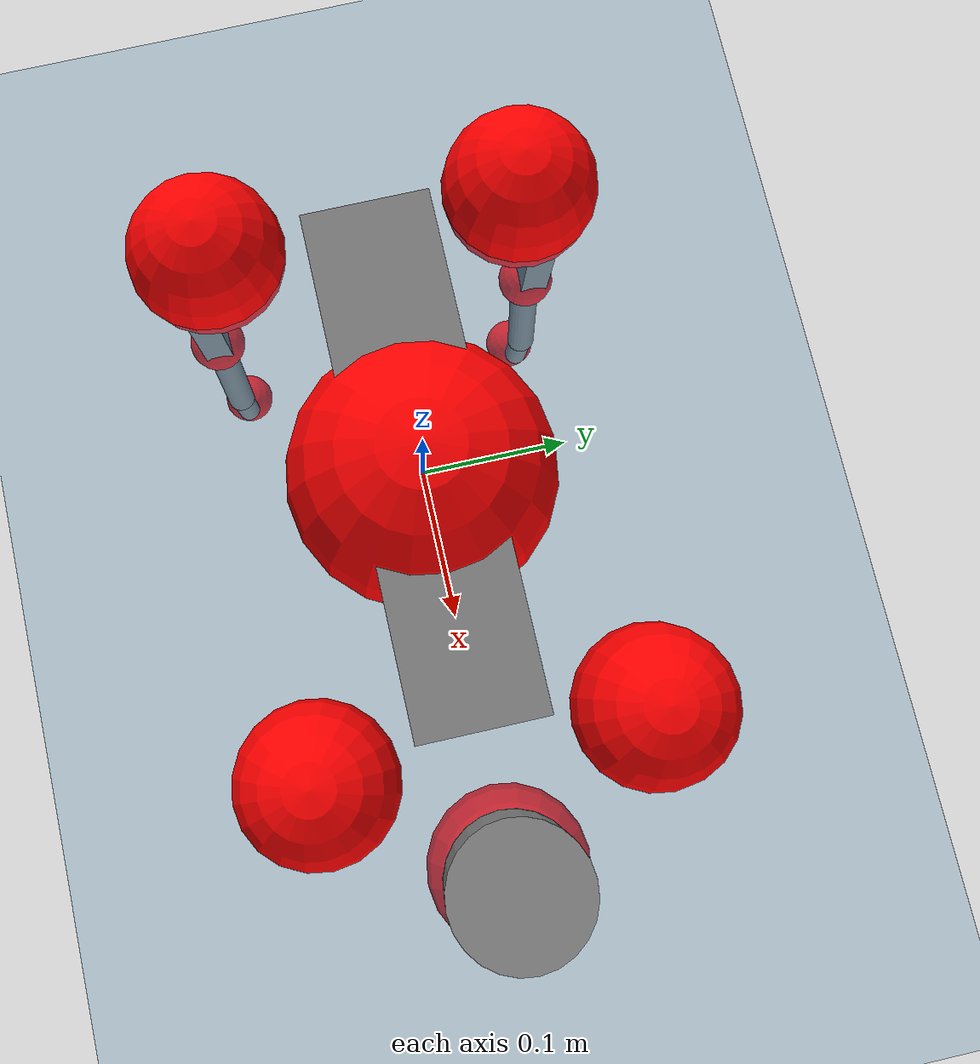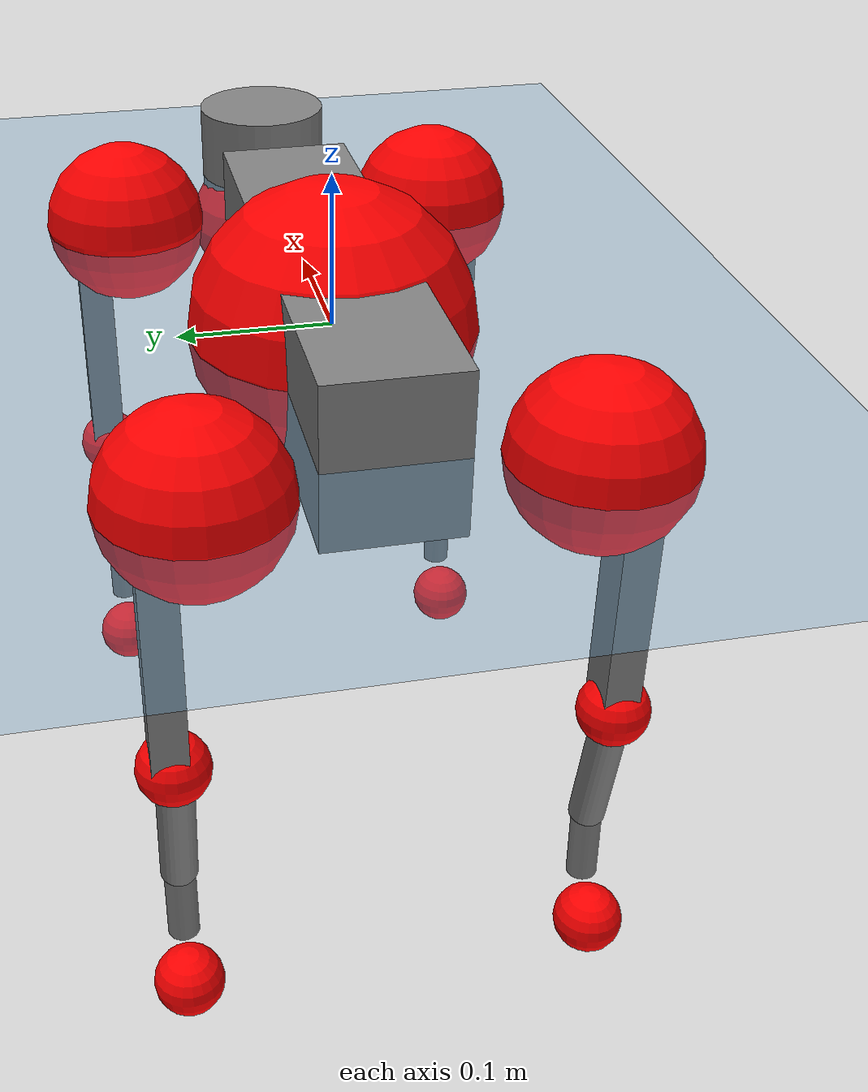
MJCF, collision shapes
<mujoco model="go2">
  <compiler angle="radian" assetdir="assets" balanceinertia="true" inertiafromgeom="false"/>

  <option timestep="0.005" density="1.2" viscosity="2e-05"/>

  <size nkey="1"/>

  <visual>
    <quality shadowsize="8192"/>
    <map shadowclip="0.5"/>
  </visual>

  <default>
    <default class="/">
      <geom contype="0" conaffinity="0" group="1" solref="-1000 -80"/>
      <site size="0.01 0.005 0.005" group="5"/>
      <general forcelimited="true" biastype="affine" gainprm="20" biasprm="0 -20 -0.5"/>
      <default class="go2">
        <joint armature="0.01" damping="0.01" frictionloss="0.2"/>
        <geom condim="1" margin="0.001"/>
        <default class="visual">
          <geom type="mesh" group="2"/>
        </default>
        <default class="collision">
          <geom group="3"/>
          <default class="foot">
            <geom size="0.022 0 0" condim="6" priority="1" friction="0.8 0.02 0.01" solimp="0.015 1 0.022"/>
          </default>
        </default>
        <default class="reward_collision_sphere">
          <geom group="5" rgba="1 0 0 1"/>
        </default>
      </default>
    </default>
  </default>

  <asset>
    <texture type="skybox" colorspace="auto" name="//unnamed_texture_0" builtin="gradient" rgb1="0.95 0.95 0.95" rgb2="0.95 0.95 0.95" width="100" height="600"/>
    <texture type="2d" colorspace="auto" name="texplane" builtin="checker" rgb1="0.345 0.575 0.748" rgb2="0.345 0.575 0.748" markrgb="1 1 1" width="512" height="512"/>
    <material name="MatPlane" class="/" texture="texplane" texuniform="true" texrepeat="2 2" specular="0.9"/>
    <material name="metal" class="/" rgba="0.9 0.95 0.95 1"/>
    <material name="black" class="/" rgba="0 0 0 1"/>
    <material name="white" class="/"/>
    <material name="gray" class="/" rgba="0.671705 0.692426 0.77427 1"/>
    <mesh name="base_0" class="/" file="base_0.obj"/>
    <mesh name="base_1" class="/" file="base_1.obj"/>
    <mesh name="base_2" class="/" file="base_2.obj"/>
    <mesh name="base_3" class="/" file="base_3.obj"/>
    <mesh name="base_4" class="/" file="base_4.obj"/>
    <mesh name="hip_0" class="/" file="hip_0.obj"/>
    <mesh name="hip_1" class="/" file="hip_1.obj"/>
    <mesh name="thigh_0" class="/" file="thigh_0.obj"/>
    <mesh name="thigh_1" class="/" file="thigh_1.obj"/>
    <mesh name="thigh_mirror_0" class="/" file="thigh_mirror_0.obj"/>
    <mesh name="thigh_mirror_1" class="/" file="thigh_mirror_1.obj"/>
    <mesh name="calf_0" class="/" file="calf_0.obj"/>
    <mesh name="calf_1" class="/" file="calf_1.obj"/>
    <mesh name="calf_mirror_0" class="/" file="calf_mirror_0.obj"/>
    <mesh name="calf_mirror_1" class="/" file="calf_mirror_1.obj"/>
    <mesh name="foot" class="/" file="foot.obj"/>
  </asset>

  <worldbody>
    <geom name="floor" class="/" size="100 100 0.125" type="plane" group="0" material="MatPlane"/>
    <light name="toplight_shadow" class="/" pos="0 0 5" dir="0.0990148 0.0990148 -0.990148" type="directional" ambient="0.04 0.04 0.04" diffuse="0.55 0.55 0.55" specular="0.12 0.12 0.12"/>
    <light name="toplight_fill" class="/" pos="0 0 5" dir="0.0990148 0.0990148 -0.990148" type="directional" castshadow="false" ambient="0.04 0.04 0.04" diffuse="0.3 0.3 0.3" specular="0.08 0.08 0.08"/>
    <body name="trunk" childclass="go2" pos="-0.0001964 -0.000405607 0.000351062" quat="1 -1.6346e-05 -2.2642e-05 -1.03423e-05">
      <inertial pos="0.0196309 -0.000800177 -0.00462885" quat="0.00272744 0.711064 -0.0113751 0.70303" mass="5.70968" diaginertia="0.0936232 0.0861595 0.0121927"/>
      <joint name="//unnamed_joint_0" type="free" armature="0" damping="0" frictionloss="0"/>
      <geom name="//unnamed_geom_1" class="visual" material="black" mesh="base_0"/>
      <geom name="//unnamed_geom_2" class="visual" material="black" mesh="base_1"/>
      <geom name="//unnamed_geom_3" class="visual" material="black" mesh="base_2"/>
      <geom name="//unnamed_geom_4" class="visual" material="white" mesh="base_3"/>
      <geom name="//unnamed_geom_5" class="visual" material="gray" mesh="base_4"/>
      <geom name="trunk_1" class="collision" size="0.176461 0.0438573 0.053473" type="box"/>
      <geom name="trunk_2" class="collision" size="0.0469062 0.0422156" pos="0.276992 0 0.00870393" type="cylinder"/>
      <geom name="trunk_3" class="collision" size="0.0440918" pos="0.284767 0 -0.0522236"/>
      <geom name="//unnamed_geom_9" class="reward_collision_sphere" size="0.0938124"/>
      <geom name="//unnamed_geom_10" class="reward_collision_sphere" size="0.0562874" pos="0.272133 0 -0.0391677"/>
      <site name="imu" pos="-0.0236192 -0.00370445 0.0348453" size="0.00938124"/>
      <camera name="track" pos="0 -1.94415 0" quat="0.707107 0.707107 0 0" mode="trackcom"/>
      <camera name="ego_camera" pos="0.303234 0 0.0391677" quat="-0.5 -0.5 0.5 0.5"/>
      <body name="FL_hip" pos="0.187076 0.0474271 0.00272959" quat="1 -0.000137619 0.000274644 -0.000135407">
        <inertial pos="-0.00560057 0.00196907 -0.000820933" quat="0.496225 0.497916 0.505853 0.499953" mass="0.559503" diaginertia="0.000765905 0.000517291 0.000241634"/>
        <joint name="FL_hip_joint" pos="0 0 0" axis="0.999987 0.00502836 0.000300466" stiffness="0.0106471" range="-1.00621 1.03149" armature="0.00943279" damping="0.00109977" frictionloss="0.185431"/>
        <geom name="//unnamed_geom_11" class="visual" material="metal" mesh="hip_0"/>
        <geom name="//unnamed_geom_12" class="visual" material="gray" mesh="hip_1"/>
        <geom name="//unnamed_geom_13" class="collision" size="0.0431537 0.0187625" pos="0 0.077766 0" quat="0.707107 0.707107 0 0" type="cylinder"/>
        <geom name="//unnamed_geom_14" class="reward_collision_sphere" size="0.0562874" pos="0 0.0680453 0"/>
        <body name="FL_thigh" pos="-0.00110585 0.0946136 0.00221365" quat="1 -1.44483e-05 -2.26376e-05 -7.98363e-06">
          <inertial pos="-0.00395893 -0.0220705 -0.0279204" quat="0.827558 0.0860121 -0.0163114 0.554512" mass="0.951743" diaginertia="0.00517562 0.00505628 0.000441371"/>
          <joint name="FL_thigh_joint" pos="0 0 0" axis="0.00843405 0.999964 -0.00121452" stiffness="0.00526272" range="-1.58781 3.52425" armature="0.00970517" damping="0.00982874" frictionloss="0.179121"/>
          <geom name="//unnamed_geom_15" class="visual" material="metal" mesh="thigh_0"/>
          <geom name="//unnamed_geom_16" class="visual" material="gray" mesh="thigh_1"/>
          <geom name="//unnamed_geom_17" class="collision" size="0.0999102 0.011492 0.0159481" pos="0 0 -0.0926968" quat="0.707107 0 0.707107 0" type="box"/>
          <body name="FL_calf" pos="-0.000298907 -0.00233941 -0.184597" quat="1 -0.000204596 0.000362022 6.36348e-06">
            <inertial pos="0.00590465 -0.000416296 -0.12463" quat="0.710752 0.00207976 -0.00383364 0.703429" mass="0.198475" diaginertia="0.00129084 0.00130057 2.60243e-05"/>
            <joint name="FL_calf_joint" pos="0 0 0" axis="-0.00735182 0.999967 -0.00341942" stiffness="0.00236435" range="-2.76171 -0.834517" armature="0.00965607" damping="0.000834128" frictionloss="0.188958"/>
            <geom name="//unnamed_geom_18" class="visual" material="gray" mesh="calf_0"/>
            <geom name="//unnamed_geom_19" class="visual" material="black" mesh="calf_1"/>
            <geom name="FL_calf0" class="collision" size="0.0112575 0.0562874" pos="0.00777522 0 -0.0522236" quat="0.994493 0 -0.104807 0" type="cylinder"/>
            <geom name="//unnamed_geom_21" class="collision" size="0.0103194 0.030489" pos="0.019438 0 -0.128818" quat="0.999688 0 0.0249974 0" type="cylinder"/>
            <geom name="//unnamed_geom_22" class="visual" pos="0 0 -0.185394" quat="1 0 0 0" material="black" mesh="foot"/>
            <geom name="FL_foot" class="foot" size="0.0181262" pos="-0.0019438 0 -0.185394"/>
            <geom name="//unnamed_geom_24" class="reward_collision_sphere" size="0.0234531"/>
            <geom name="//unnamed_geom_25" class="reward_collision_sphere" size="0.0234531" pos="-0.0019438 0 -0.185394"/>
            <site name="FL_foot" class="foot" pos="-0.0019438 0 -0.185394" size="0.00938124"/>
          </body>
        </body>
      </body>
      <body name="FR_hip" pos="0.18838 -0.0444104 -0.000923175" quat="1 -5.55527e-05 -8.18623e-05 -2.38948e-05">
        <inertial pos="-0.00447965 -0.00126608 -0.00100028" quat="0.498163 0.505458 0.499215 0.497122" mass="0.55398" diaginertia="0.000775384 0.000505351 0.000242351"/>
        <joint name="FR_hip_joint" pos="0 0 0" axis="0.999996 -0.00291104 6.54755e-05" stiffness="0.00705743" range="-1.05055 1.0478" armature="0.00907952" damping="0.0177665" frictionloss="0.179693"/>
        <geom name="//unnamed_geom_26" class="visual" pos="0 8.85813e-10 3.79943e-08" quat="4.63268e-05 1 0 0" material="metal" mesh="hip_0"/>
        <geom name="//unnamed_geom_27" class="visual" pos="0 1.43601e-09 -9.39745e-08" quat="4.63268e-05 1 0 0" material="gray" mesh="hip_1"/>
        <geom name="//unnamed_geom_28" class="collision" size="0.0431537 0.0187625" pos="0 -0.077766 0" quat="0.707107 0.707107 0 0" type="cylinder"/>
        <geom name="//unnamed_geom_29" class="reward_collision_sphere" size="0.0562874" pos="0 -0.0680453 0"/>
        <body name="FR_thigh" pos="0.00232686 -0.0909788 0.00193281" quat="1 -1.74991e-05 0.00029456 0.000403179">
          <inertial pos="-0.0028307 0.0198386 -0.0283684" quat="0.550749 -0.0216292 0.0871386 0.829828" mass="0.960403" diaginertia="0.00522681 0.00511615 0.000448608"/>
          <joint name="FR_thigh_joint" pos="0 0 0" axis="0.000595142 -0.999998 0.00196934" stiffness="0.00167503" range="-3.52542 1.56853" armature="0.00959337" damping="0.0124992" frictionloss="0.187364"/>
          <geom name="//unnamed_geom_30" class="visual" material="metal" mesh="thigh_mirror_0"/>
          <geom name="//unnamed_geom_31" class="visual" material="gray" mesh="thigh_mirror_1"/>
          <geom name="//unnamed_geom_32" class="collision" size="0.0999102 0.011492 0.0159481" pos="0 0 -0.0926968" quat="0.707107 0 0.707107 0" type="box"/>
          <body name="FR_calf" pos="-0.00154094 0.000268895 -0.1849" quat="1 -0.000242469 0.000425385 0.000211834">
            <inertial pos="0.00504411 0.000647512 -0.123645" quat="0.704849 -0.00635422 0.00104542 0.709328" mass="0.200024" diaginertia="0.00129199 0.00126889 2.63138e-05"/>
            <joint name="FR_calf_joint" pos="0 0 0" axis="-0.00440876 -0.999949 0.00913622" stiffness="0.00273303" range="0.845313 2.71699" armature="0.0100907" damping="0.0181554" frictionloss="0.178672"/>
            <geom name="//unnamed_geom_33" class="visual" material="gray" mesh="calf_mirror_0"/>
            <geom name="//unnamed_geom_34" class="visual" material="black" mesh="calf_mirror_1"/>
            <geom name="FR_calf0" class="collision" size="0.0121956 0.0562874" pos="0.00971902 0 -0.0522236" quat="0.995004 0 -0.0998334 0" type="cylinder"/>
            <geom name="//unnamed_geom_36" class="collision" size="0.0103194 0.030489" pos="0.019438 0 -0.128818" quat="0.999688 0 0.0249974 0" type="cylinder"/>
            <geom name="//unnamed_geom_37" class="visual" pos="0 0 -0.185394" quat="1 0 0 0" material="black" mesh="foot"/>
            <geom name="FR_foot" class="foot" size="0.0219007" pos="-0.0019438 0 -0.185394"/>
            <geom name="//unnamed_geom_39" class="reward_collision_sphere" size="0.0234531"/>
            <geom name="//unnamed_geom_40" class="reward_collision_sphere" size="0.0234531" pos="-0.0019438 0 -0.185394"/>
            <site name="FR_foot" class="foot" pos="-0.0019438 0 -0.185394" size="0.00938124"/>
          </body>
        </body>
      </body>
      <body name="RL_hip" pos="-0.188009 0.0449714 -0.000510762" quat="1 -7.51068e-06 -7.18437e-06 3.73163e-05">
        <inertial pos="0.00529483 0.00158413 -0.000556649" quat="0.50737 0.49651 0.49714 0.498904" mass="0.549087" diaginertia="0.00075661 0.000511145 0.000236137"/>
        <joint name="RL_hip_joint" pos="0 0 0" axis="-0.999924 -0.0107856 -0.00604304" stiffness="0.00480118" range="-1.04985 1.06692" armature="0.0092934" damping="0.0102661" frictionloss="0.189651"/>
        <geom name="//unnamed_geom_41" class="visual" pos="-8.84309e-10 0 -1.73345e-07" quat="4.63268e-05 0 1 0" material="metal" mesh="hip_0"/>
        <geom name="//unnamed_geom_42" class="visual" pos="-1.43357e-09 0 -1.53732e-07" quat="4.63268e-05 0 1 0" material="gray" mesh="hip_1"/>
        <geom name="//unnamed_geom_43" class="collision" size="0.0431537 0.0187625" pos="0 0.077766 0" quat="0.707107 0.707107 0 0" type="cylinder"/>
        <geom name="//unnamed_geom_44" class="reward_collision_sphere" size="0.0562874" pos="0 0.0680453 0"/>
        <body name="RL_thigh" pos="0.000336448 0.092238 -0.00154136" quat="1 -6.57758e-05 5.07663e-05 -4.81174e-05">
          <inertial pos="-0.00367495 -0.022005 -0.030095" quat="0.827669 0.0854849 -0.0210204 0.554269" mass="0.964729" diaginertia="0.00512115 0.00495005 0.000432059"/>
          <joint name="RL_thigh_joint" pos="0 0 0" axis="-0.00383335 0.999972 0.00643259" range="-0.529882 4.52572" armature="0.00977677" damping="0.00421985" frictionloss="0.184363"/>
          <geom name="//unnamed_geom_45" class="visual" material="metal" mesh="thigh_0"/>
          <geom name="//unnamed_geom_46" class="visual" material="gray" mesh="thigh_1"/>
          <geom name="//unnamed_geom_47" class="collision" size="0.0999102 0.011492 0.0159481" pos="0 0 -0.0926968" quat="0.707107 0 0.707107 0" type="box"/>
          <body name="RL_calf" pos="0.000272829 -0.00266927 -0.186192" quat="1 1.15827e-05 -0.000132069 -6.12053e-05">
            <inertial pos="0.00583764 -0.000314925 -0.123512" quat="0.710329 0.00159111 -0.00477759 0.703851" mass="0.196417" diaginertia="0.00129999 0.00126228 2.63118e-05"/>
            <joint name="RL_calf_joint" pos="0 0 0" axis="0.00124994 0.999996 0.00241348" range="-2.68346 -0.842542" armature="0.00921737" damping="0.0055515" frictionloss="0.188923"/>
            <geom name="//unnamed_geom_48" class="visual" material="gray" mesh="calf_0"/>
            <geom name="//unnamed_geom_49" class="visual" material="black" mesh="calf_1"/>
            <geom name="RL_calf0" class="collision" size="0.0121956 0.0562874" pos="0.00971902 0 -0.0522236" quat="0.995004 0 -0.0998334 0" type="cylinder"/>
            <geom name="//unnamed_geom_51" class="collision" size="0.0103194 0.030489" pos="0.019438 0 -0.128818" quat="0.999688 0 0.0249974 0" type="cylinder"/>
            <geom name="//unnamed_geom_52" class="visual" pos="0 0 -0.185394" quat="1 0 0 0" material="black" mesh="foot"/>
            <geom name="RL_foot" class="foot" size="0.0170785" pos="-0.0019438 0 -0.185394"/>
            <geom name="//unnamed_geom_54" class="reward_collision_sphere" size="0.0234531"/>
            <geom name="//unnamed_geom_55" class="reward_collision_sphere" size="0.0234531" pos="-0.0019438 0 -0.185394"/>
            <site name="RL_foot" class="foot" pos="-0.0019438 0 -0.185394" size="0.00938124"/>
          </body>
        </body>
      </body>
      <body name="RR_hip" pos="-0.187576 -0.0464137 -0.000959073" quat="1 0.000150923 -0.000363062 0.000212044">
        <inertial pos="0.00515192 -0.000954606 0.000433354" quat="0.49981 0.497296 0.497631 0.505223" mass="0.553201" diaginertia="0.000762245 0.000506777 0.00024205"/>
        <joint name="RR_hip_joint" pos="0 0 0" axis="-0.999975 0.0070743 0.000116668" range="-1.05775 1.02009" armature="0.00938751" damping="0.00613846" frictionloss="0.19203"/>
        <geom name="//unnamed_geom_56" class="visual" pos="8.84315e-10 8.85813e-10 -2.11339e-07" quat="2.14617e-09 4.63268e-05 4.63268e-05 -1" material="metal" mesh="hip_0"/>
        <geom name="//unnamed_geom_57" class="visual" pos="1.43356e-09 1.43601e-09 -5.97577e-08" quat="2.14617e-09 4.63268e-05 4.63268e-05 -1" material="gray" mesh="hip_1"/>
        <geom name="//unnamed_geom_58" class="collision" size="0.0431537 0.0187625" pos="0 -0.077766 0" quat="0.707107 0.707107 0 0" type="cylinder"/>
        <geom name="//unnamed_geom_59" class="reward_collision_sphere" size="0.0562874" pos="0 -0.0680453 0"/>
        <body name="RR_thigh" pos="0.000399734 -0.0927903 -0.000894144" quat="1 -0.000260694 -0.000117455 -0.000418782">
          <inertial pos="-0.00359087 0.0203972 -0.0290607" quat="0.551514 -0.0198592 0.0848657 0.8296" mass="0.956336" diaginertia="0.00521916 0.00508866 0.00044218"/>
          <joint name="RR_thigh_joint" pos="0 0 0" axis="-0.00284286 -0.999976 -0.00634316" stiffness="0.00240283" range="-4.52863 0.509944" armature="0.00941988" damping="0.0147555" frictionloss="0.190886"/>
          <geom name="//unnamed_geom_60" class="visual" material="metal" mesh="thigh_mirror_0"/>
          <geom name="//unnamed_geom_61" class="visual" material="gray" mesh="thigh_mirror_1"/>
          <geom name="//unnamed_geom_62" class="collision" size="0.0999102 0.011492 0.0159481" pos="0 0 -0.0926968" quat="0.707107 0 0.707107 0" type="box"/>
          <body name="RR_calf" pos="-0.0017599 -0.000721213 -0.186642" quat="1 -8.9885e-05 -0.000463571 -0.000179319">
            <inertial pos="0.00805037 0.000729087 -0.123238" quat="0.702894 -0.00136985 0.004925 0.711276" mass="0.199036" diaginertia="0.00131434 0.00127816 2.65853e-05"/>
            <joint name="RR_calf_joint" pos="0 0 0" axis="0.00197883 -0.999969 0.00762262" range="0.827117 2.75734" armature="0.00876196" damping="0.00639137" frictionloss="0.188445"/>
            <geom name="//unnamed_geom_63" class="visual" material="gray" mesh="calf_mirror_0"/>
            <geom name="//unnamed_geom_64" class="visual" material="black" mesh="calf_mirror_1"/>
            <geom name="RR_calf0" class="collision" size="0.0121956 0.0562874" pos="0.00971902 0 -0.0522236" quat="0.995004 0 -0.0998334 0" type="cylinder"/>
            <geom name="//unnamed_geom_66" class="collision" size="0.0103194 0.030489" pos="0.019438 0 -0.128818" quat="0.999688 0 0.0249974 0" type="cylinder"/>
            <geom name="//unnamed_geom_67" class="visual" pos="0 0 -0.185394" quat="1 0 0 0" material="black" mesh="foot"/>
            <geom name="RR_foot" class="foot" size="0.0206348" pos="-0.0019438 0 -0.185394"/>
            <geom name="//unnamed_geom_69" class="reward_collision_sphere" size="0.0234531"/>
            <geom name="//unnamed_geom_70" class="reward_collision_sphere" size="0.0234531" pos="-0.0019438 0 -0.185394"/>
            <site name="RR_foot" class="foot" pos="-0.0019438 0 -0.185394" size="0.00938124"/>
          </body>
        </body>
      </body>
    </body>
  </worldbody>

  <contact>
    <pair class="/" geom1="floor" geom2="FL_foot" name="//unnamed_contact_0"/>
    <pair class="/" geom1="floor" geom2="FR_foot" name="//unnamed_contact_1"/>
    <pair class="/" geom1="floor" geom2="RL_foot" name="//unnamed_contact_2"/>
    <pair class="/" geom1="floor" geom2="RR_foot" name="//unnamed_contact_3"/>
  </contact>

  <actuator>
    <general name="FL_hip" class="/" joint="FL_hip_joint" forcerange="-23.923 23.923" gainprm="19.6168" biasprm="0 -19.6168 -0.461122"/>
    <general name="FL_thigh" class="/" joint="FL_thigh_joint" forcerange="-22.6255 22.6255" gainprm="19.6168" biasprm="0 -19.6168 -0.461122"/>
    <general name="FL_calf" class="/" joint="FL_calf_joint" forcerange="-43.25 43.25" gainprm="19.6168" biasprm="0 -19.6168 -0.461122"/>
    <general name="FR_hip" class="/" joint="FR_hip_joint" forcerange="-23.5263 23.5263" gainprm="19.6168" biasprm="0 -19.6168 -0.461122"/>
    <general name="FR_thigh" class="/" joint="FR_thigh_joint" forcerange="-23.5485 23.5485" gainprm="19.6168" biasprm="0 -19.6168 -0.461122"/>
    <general name="FR_calf" class="/" joint="FR_calf_joint" forcerange="-42.1606 42.1606" gainprm="19.6168" biasprm="0 -19.6168 -0.461122"/>
    <general name="RL_hip" class="/" joint="RL_hip_joint" forcerange="-22.3348 22.3348" gainprm="19.6168" biasprm="0 -19.6168 -0.461122"/>
    <general name="RL_thigh" class="/" joint="RL_thigh_joint" forcerange="-22.6965 22.6965" gainprm="19.6168" biasprm="0 -19.6168 -0.461122"/>
    <general name="RL_calf" class="/" joint="RL_calf_joint" forcerange="-43.8304 43.8304" gainprm="19.6168" biasprm="0 -19.6168 -0.461122"/>
    <general name="RR_hip" class="/" joint="RR_hip_joint" forcerange="-20.687 20.687" gainprm="19.6168" biasprm="0 -19.6168 -0.461122"/>
    <general name="RR_thigh" class="/" joint="RR_thigh_joint" forcerange="-21.7895 21.7895" gainprm="19.6168" biasprm="0 -19.6168 -0.461122"/>
    <general name="RR_calf" class="/" joint="RR_calf_joint" forcerange="-43.0542 43.0542" gainprm="19.6168" biasprm="0 -19.6168 -0.461122"/>
  </actuator>

  <sensor>
    <gyro site="imu" name="imu_angular_velocity"/>
    <velocimeter site="imu" name="imu_linear_velocity"/>
    <framelinvel objtype="site" objname="FL_foot" name="FL_foot_global_linear_velocity"/>
    <framelinvel objtype="site" objname="FR_foot" name="FR_foot_global_linear_velocity"/>
    <framelinvel objtype="site" objname="RL_foot" name="RL_foot_global_linear_velocity"/>
    <framelinvel objtype="site" objname="RR_foot" name="RR_foot_global_linear_velocity"/>
  </sensor>

  <keyframe>
    <key name="home" qpos="0 0 0.325 1 0 0 0 0.1 0.8 -1.5 -0.1 -0.8 1.5 -0.1 0.8 -1.5 0.1 -0.8 1.5"/>
  </keyframe>
</mujoco>
